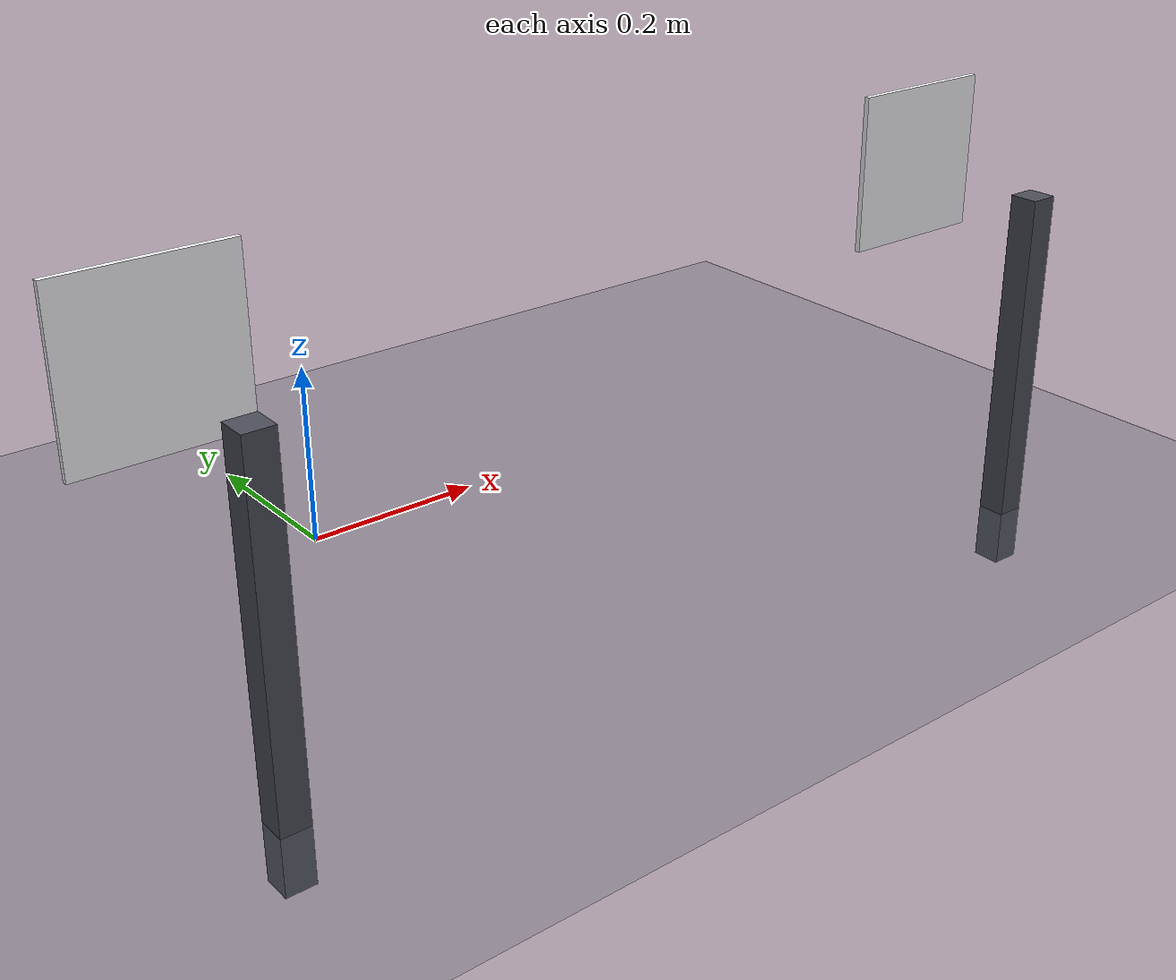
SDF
<?xml version="1.0"?>
<sdf version="1.10">
  <world name="blindspot">
    <physics name="fast" type="ignored">
      <max_step_size>0.002</max_step_size>
      <real_time_factor>1.0</real_time_factor>
    </physics>
    <plugin filename="gz-sim-physics-system" name="gz::sim::systems::Physics"/>
    <plugin filename="gz-sim-user-commands-system" name="gz::sim::systems::UserCommands"/>
    <plugin filename="gz-sim-scene-broadcaster-system" name="gz::sim::systems::SceneBroadcaster"/>
    <plugin filename="gz-sim-sensors-system" name="gz::sim::systems::Sensors">
      <render_engine>ogre2</render_engine>
    </plugin>

    <light type="directional" name="sun">
      <cast_shadows>false</cast_shadows>
      <pose>0 0 10 0 0 0</pose>
      <diffuse>0.95 0.95 0.95 1</diffuse>
      <direction>-0.4 0.1 -0.9</direction>
    </light>
    <light type="point" name="fill">
      <pose>0.3 0 0.9 0 0 0</pose>
      <diffuse>0.7 0.7 0.7 1</diffuse>
      <attenuation><range>6</range><linear>0.25</linear></attenuation>
    </light>

    <model name="ground_plane">
      <static>true</static>
      <link name="link">
        <collision name="c"><geometry><plane><normal>0 0 1</normal><size>20 20</size></plane></geometry></collision>
        <visual name="v">
          <geometry><plane><normal>0 0 1</normal><size>20 20</size></plane></geometry>
          <material><ambient>0.3 0.32 0.36 1</ambient><diffuse>0.35 0.37 0.42 1</diffuse></material>
        </visual>
      </link>
    </model>

    <model name="panel_left">
      <pose>0.636 -0.250 0.359 0 0 -1.5708</pose>
      <link name="post">
        <inertial><mass>50</mass><inertia><ixx>1</ixx><iyy>1</iyy><izz>1</izz></inertia></inertial>
        <visual name="v">
          <pose>0.16 0 -0.21 0 0 0</pose>
          <geometry><box><size>0.03 0.03 0.42</size></box></geometry>
          <material><ambient>0.25 0.26 0.3 1</ambient><diffuse>0.3 0.31 0.35 1</diffuse></material>
        </visual>
      </link>
      <link name="plate">
        <pose>0 0 0 0 0 0</pose>
        <inertial><mass>1.5</mass><inertia><ixx>0.01</ixx><iyy>0.01</iyy><izz>0.01</izz></inertia></inertial>
        <collision name="c"><geometry><box><size>0.006 0.17 0.17</size></box></geometry></collision>
        <visual name="face">
          <geometry><box><size>0.006 0.17 0.17</size></box></geometry>
          <material><ambient>0.93 0.93 0.95 1</ambient><diffuse>0.98 0.98 1 1</diffuse></material>
        </visual>
        <visual name="socket">
          <pose>-0.0032 0 0 0 1.5708 0</pose>
          <geometry><cylinder><radius>0.014</radius><length>0.001</length></cylinder></geometry>
          <material><ambient>0.15 0.35 0.6 1</ambient><diffuse>0.2 0.45 0.75 1</diffuse></material>
        </visual>
        <visual name="dot0">
          <pose>-0.0032 0.05000 0.00000 0 1.5708 0</pose>
          <geometry><cylinder><radius>0.008</radius><length>0.001</length></cylinder></geometry>
          <material><ambient>0.02 0.02 0.02 1</ambient><diffuse>0.05 0.05 0.05 1</diffuse></material>
        </visual>
        <visual name="dot1">
          <pose>-0.0032 0.02500 0.04330 0 1.5708 0</pose>
          <geometry><cylinder><radius>0.008</radius><length>0.001</length></cylinder></geometry>
          <material><ambient>0.02 0.02 0.02 1</ambient><diffuse>0.05 0.05 0.05 1</diffuse></material>
        </visual>
        <visual name="dot2">
          <pose>-0.0032 -0.02500 0.04330 0 1.5708 0</pose>
          <geometry><cylinder><radius>0.008</radius><length>0.001</length></cylinder></geometry>
          <material><ambient>0.02 0.02 0.02 1</ambient><diffuse>0.05 0.05 0.05 1</diffuse></material>
        </visual>
        <visual name="dot3">
          <pose>-0.0032 -0.05000 0.00000 0 1.5708 0</pose>
          <geometry><cylinder><radius>0.008</radius><length>0.001</length></cylinder></geometry>
          <material><ambient>0.02 0.02 0.02 1</ambient><diffuse>0.05 0.05 0.05 1</diffuse></material>
        </visual>
        <visual name="dot4">
          <pose>-0.0032 -0.02500 -0.04330 0 1.5708 0</pose>
          <geometry><cylinder><radius>0.008</radius><length>0.001</length></cylinder></geometry>
          <material><ambient>0.02 0.02 0.02 1</ambient><diffuse>0.05 0.05 0.05 1</diffuse></material>
        </visual>
        <visual name="dot5">
          <pose>-0.0032 0.02500 -0.04330 0 1.5708 0</pose>
          <geometry><cylinder><radius>0.008</radius><length>0.001</length></cylinder></geometry>
          <material><ambient>0.02 0.02 0.02 1</ambient><diffuse>0.05 0.05 0.05 1</diffuse></material>
        </visual>
      </link>
      <joint name="anchor" type="fixed">
        <parent>world</parent>
        <child>post</child>
      </joint>
      <joint name="tilt" type="revolute">
        <parent>post</parent>
        <child>plate</child>
        <axis>
          <xyz>0 0 1</xyz>
          <limit><lower>-1.6</lower><upper>1.6</upper><effort>200</effort><velocity>3</velocity></limit>
          <dynamics><damping>2.0</damping></dynamics>
        </axis>
      </joint>
      <plugin filename="gz-sim-joint-position-controller-system"
              name="gz::sim::systems::JointPositionController">
        <joint_name>tilt</joint_name>
        <topic>/panel_tilt_left</topic>
        <p_gain>40</p_gain><i_gain>0.5</i_gain><d_gain>6</d_gain>
      </plugin>
    </model>

    <model name="panel_right">
      <pose>-0.264 -0.250 0.359 0 0 -1.5708</pose>
      <link name="post">
        <inertial><mass>50</mass><inertia><ixx>1</ixx><iyy>1</iyy><izz>1</izz></inertia></inertial>
        <visual name="v">
          <pose>0.16 0 -0.21 0 0 0</pose>
          <geometry><box><size>0.03 0.03 0.42</size></box></geometry>
          <material><ambient>0.25 0.26 0.3 1</ambient><diffuse>0.3 0.31 0.35 1</diffuse></material>
        </visual>
      </link>
      <link name="plate">
        <pose>0 0 0 0 0 0</pose>
        <inertial><mass>1.5</mass><inertia><ixx>0.01</ixx><iyy>0.01</iyy><izz>0.01</izz></inertia></inertial>
        <collision name="c"><geometry><box><size>0.006 0.17 0.17</size></box></geometry></collision>
        <visual name="face">
          <geometry><box><size>0.006 0.17 0.17</size></box></geometry>
          <material><ambient>0.93 0.93 0.95 1</ambient><diffuse>0.98 0.98 1 1</diffuse></material>
        </visual>
        <visual name="socket">
          <pose>-0.0032 0 0 0 1.5708 0</pose>
          <geometry><cylinder><radius>0.014</radius><length>0.001</length></cylinder></geometry>
          <material><ambient>0.15 0.35 0.6 1</ambient><diffuse>0.2 0.45 0.75 1</diffuse></material>
        </visual>
        <visual name="dot0">
          <pose>-0.0032 0.05000 0.00000 0 1.5708 0</pose>
          <geometry><cylinder><radius>0.008</radius><length>0.001</length></cylinder></geometry>
          <material><ambient>0.02 0.02 0.02 1</ambient><diffuse>0.05 0.05 0.05 1</diffuse></material>
        </visual>
        <visual name="dot1">
          <pose>-0.0032 0.02500 0.04330 0 1.5708 0</pose>
          <geometry><cylinder><radius>0.008</radius><length>0.001</length></cylinder></geometry>
          <material><ambient>0.02 0.02 0.02 1</ambient><diffuse>0.05 0.05 0.05 1</diffuse></material>
        </visual>
        <visual name="dot2">
          <pose>-0.0032 -0.02500 0.04330 0 1.5708 0</pose>
          <geometry><cylinder><radius>0.008</radius><length>0.001</length></cylinder></geometry>
          <material><ambient>0.02 0.02 0.02 1</ambient><diffuse>0.05 0.05 0.05 1</diffuse></material>
        </visual>
        <visual name="dot3">
          <pose>-0.0032 -0.05000 0.00000 0 1.5708 0</pose>
          <geometry><cylinder><radius>0.008</radius><length>0.001</length></cylinder></geometry>
          <material><ambient>0.02 0.02 0.02 1</ambient><diffuse>0.05 0.05 0.05 1</diffuse></material>
        </visual>
        <visual name="dot4">
          <pose>-0.0032 -0.02500 -0.04330 0 1.5708 0</pose>
          <geometry><cylinder><radius>0.008</radius><length>0.001</length></cylinder></geometry>
          <material><ambient>0.02 0.02 0.02 1</ambient><diffuse>0.05 0.05 0.05 1</diffuse></material>
        </visual>
        <visual name="dot5">
          <pose>-0.0032 0.02500 -0.04330 0 1.5708 0</pose>
          <geometry><cylinder><radius>0.008</radius><length>0.001</length></cylinder></geometry>
          <material><ambient>0.02 0.02 0.02 1</ambient><diffuse>0.05 0.05 0.05 1</diffuse></material>
        </visual>
      </link>
      <joint name="anchor" type="fixed">
        <parent>world</parent>
        <child>post</child>
      </joint>
      <joint name="tilt" type="revolute">
        <parent>post</parent>
        <child>plate</child>
        <axis>
          <xyz>0 0 1</xyz>
          <limit><lower>-1.6</lower><upper>1.6</upper><effort>200</effort><velocity>3</velocity></limit>
          <dynamics><damping>2.0</damping></dynamics>
        </axis>
      </joint>
      <plugin filename="gz-sim-joint-position-controller-system"
              name="gz::sim::systems::JointPositionController">
        <joint_name>tilt</joint_name>
        <topic>/panel_tilt_right</topic>
        <p_gain>40</p_gain><i_gain>0.5</i_gain><d_gain>6</d_gain>
      </plugin>
    </model>
  </world>
</sdf>
